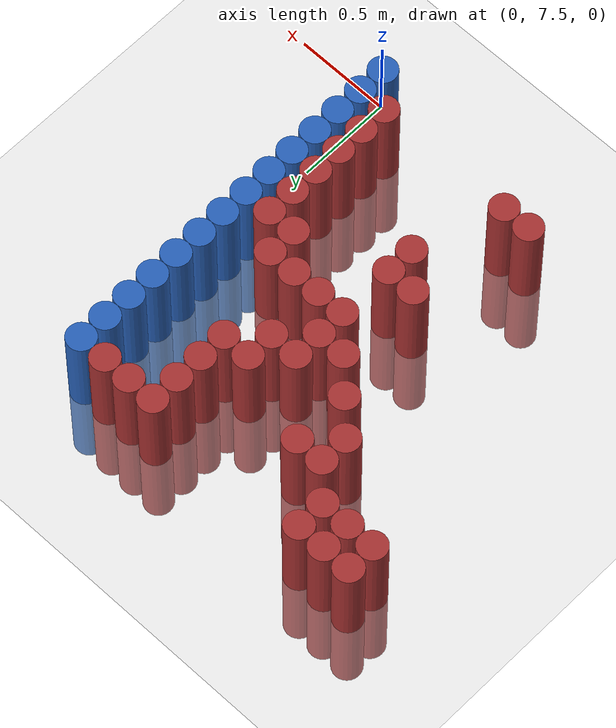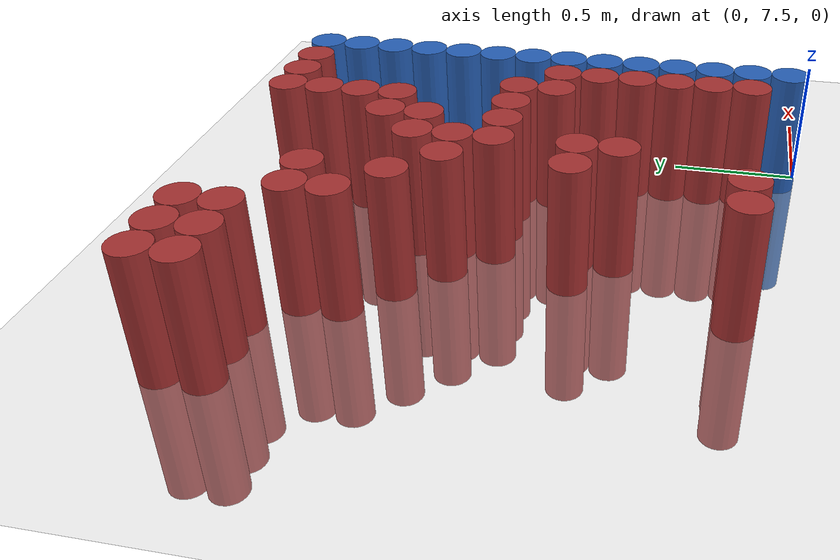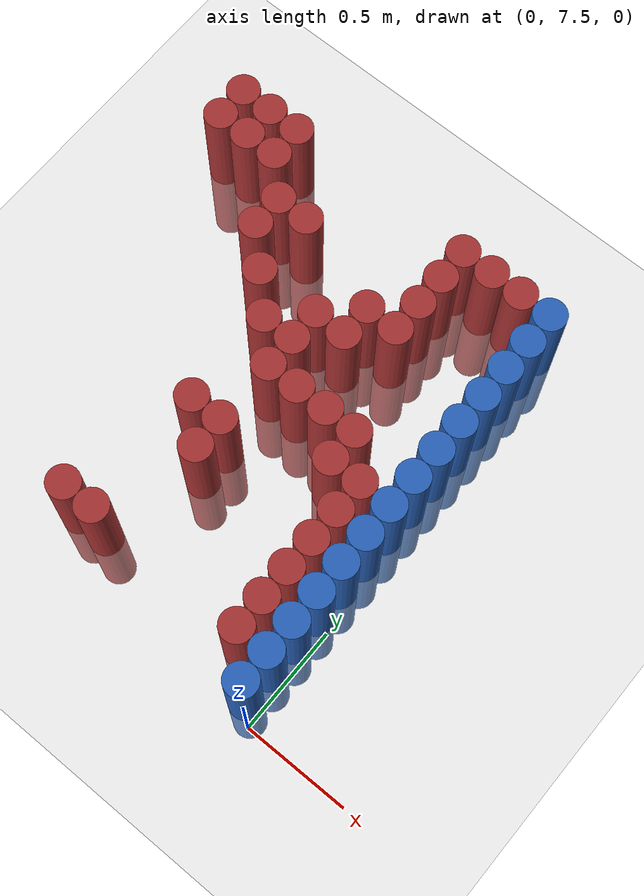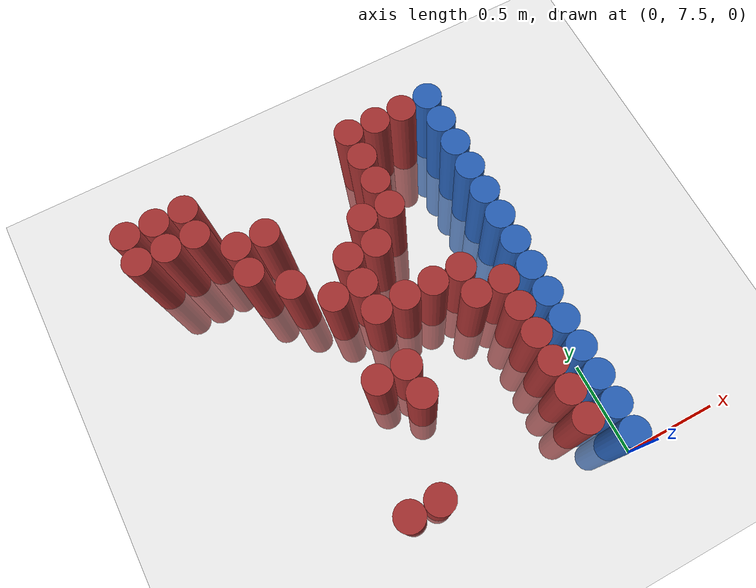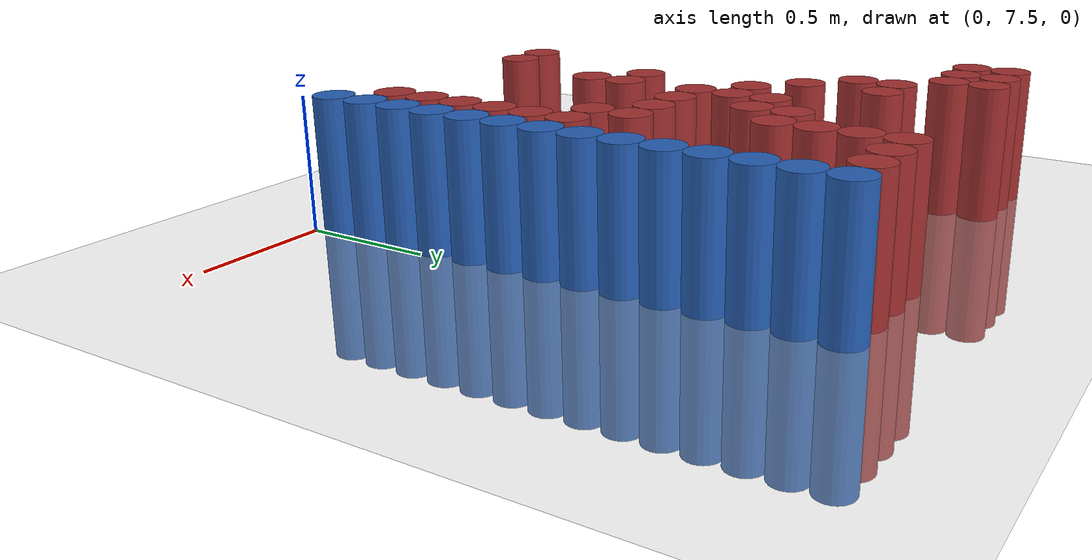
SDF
<sdf version="1.6">
 <world name="default">
  <model name="ground_plane">
   <static>1</static>
   <link name="link">
    <collision name="collision">
     <geometry><plane><normal>0 0 1</normal><size>100 100</size></plane></geometry>
     <surface><friction><ode><mu>100</mu><mu2>50</mu2></ode></friction></surface>
    </collision>
    <visual name="visual">
     <cast_shadows>0</cast_shadows>
     <geometry><plane><normal>0 0 1</normal><size>100 100</size></plane></geometry>
     <material>
      <script><uri>file://media/materials/scripts/gazebo.material</uri><name>Gazebo/Grey</name></script>
     </material>
    </visual>
   </link>
  </model>
  <model name="unit_cylinder_236">
   <static>1</static>
   <pose>-1.725000 9.375000 0.000000 0.000000 0.000000 0.000000</pose>
   <link name="link">
    <inertial>
     <mass>1</mass>
     <inertia><ixx>0.145833</ixx><ixy>0</ixy><ixz>0</ixz><iyy>0.145833</iyy><iyz>0</iyz><izz>0.125</izz></inertia>
    </inertial>
    <collision name="collision">
     <geometry><cylinder><radius>0.075000</radius><length>1</length></cylinder></geometry>
    </collision>
    <visual name="visual">
     <geometry><cylinder><radius>0.075000</radius><length>1</length></cylinder></geometry>
     <material>
      <ambient>0.648000 0.192000 0.192000 1</ambient>
      <diffuse>0.648000 0.192000 0.192000 1</diffuse>
     </material>
     <material>
      <script><name>Gazebo/Grey</name><uri>file://media/materials/scripts/gazebo.material</uri></script>
     </material>
    </visual>
   </link>
  </model>
  <model name="unit_cylinder_237">
   <static>1</static>
   <pose>-1.725000 9.525000 0.000000 0.000000 0.000000 0.000000</pose>
   <link name="link">
    <inertial>
     <mass>1</mass>
     <inertia><ixx>0.145833</ixx><ixy>0</ixy><ixz>0</ixz><iyy>0.145833</iyy><iyz>0</iyz><izz>0.125</izz></inertia>
    </inertial>
    <collision name="collision">
     <geometry><cylinder><radius>0.075000</radius><length>1</length></cylinder></geometry>
    </collision>
    <visual name="visual">
     <geometry><cylinder><radius>0.075000</radius><length>1</length></cylinder></geometry>
     <material>
      <ambient>0.648000 0.192000 0.192000 1</ambient>
      <diffuse>0.648000 0.192000 0.192000 1</diffuse>
     </material>
     <material>
      <script><name>Gazebo/Grey</name><uri>file://media/materials/scripts/gazebo.material</uri></script>
     </material>
    </visual>
   </link>
  </model>
  <model name="unit_cylinder_241">
   <static>1</static>
   <pose>-1.575000 9.375000 0.000000 0.000000 0.000000 0.000000</pose>
   <link name="link">
    <inertial>
     <mass>1</mass>
     <inertia><ixx>0.145833</ixx><ixy>0</ixy><ixz>0</ixz><iyy>0.145833</iyy><iyz>0</iyz><izz>0.125</izz></inertia>
    </inertial>
    <collision name="collision">
     <geometry><cylinder><radius>0.075000</radius><length>1</length></cylinder></geometry>
    </collision>
    <visual name="visual">
     <geometry><cylinder><radius>0.075000</radius><length>1</length></cylinder></geometry>
     <material>
      <ambient>0.648000 0.192000 0.192000 1</ambient>
      <diffuse>0.648000 0.192000 0.192000 1</diffuse>
     </material>
     <material>
      <script><name>Gazebo/Grey</name><uri>file://media/materials/scripts/gazebo.material</uri></script>
     </material>
    </visual>
   </link>
  </model>
  <model name="unit_cylinder_242">
   <static>1</static>
   <pose>-1.575000 9.525000 0.000000 0.000000 0.000000 0.000000</pose>
   <link name="link">
    <inertial>
     <mass>1</mass>
     <inertia><ixx>0.145833</ixx><ixy>0</ixy><ixz>0</ixz><iyy>0.145833</iyy><iyz>0</iyz><izz>0.125</izz></inertia>
    </inertial>
    <collision name="collision">
     <geometry><cylinder><radius>0.075000</radius><length>1</length></cylinder></geometry>
    </collision>
    <visual name="visual">
     <geometry><cylinder><radius>0.075000</radius><length>1</length></cylinder></geometry>
     <material>
      <ambient>0.648000 0.192000 0.192000 1</ambient>
      <diffuse>0.648000 0.192000 0.192000 1</diffuse>
     </material>
     <material>
      <script><name>Gazebo/Grey</name><uri>file://media/materials/scripts/gazebo.material</uri></script>
     </material>
    </visual>
   </link>
  </model>
  <model name="unit_cylinder_246">
   <static>1</static>
   <pose>-1.425000 9.375000 0.000000 0.000000 0.000000 0.000000</pose>
   <link name="link">
    <inertial>
     <mass>1</mass>
     <inertia><ixx>0.145833</ixx><ixy>0</ixy><ixz>0</ixz><iyy>0.145833</iyy><iyz>0</iyz><izz>0.125</izz></inertia>
    </inertial>
    <collision name="collision">
     <geometry><cylinder><radius>0.075000</radius><length>1</length></cylinder></geometry>
    </collision>
    <visual name="visual">
     <geometry><cylinder><radius>0.075000</radius><length>1</length></cylinder></geometry>
     <material>
      <ambient>0.648000 0.192000 0.192000 1</ambient>
      <diffuse>0.648000 0.192000 0.192000 1</diffuse>
     </material>
     <material>
      <script><name>Gazebo/Grey</name><uri>file://media/materials/scripts/gazebo.material</uri></script>
     </material>
    </visual>
   </link>
  </model>
  <model name="unit_cylinder_247">
   <static>1</static>
   <pose>-1.425000 9.525000 0.000000 0.000000 0.000000 0.000000</pose>
   <link name="link">
    <inertial>
     <mass>1</mass>
     <inertia><ixx>0.145833</ixx><ixy>0</ixy><ixz>0</ixz><iyy>0.145833</iyy><iyz>0</iyz><izz>0.125</izz></inertia>
    </inertial>
    <collision name="collision">
     <geometry><cylinder><radius>0.075000</radius><length>1</length></cylinder></geometry>
    </collision>
    <visual name="visual">
     <geometry><cylinder><radius>0.075000</radius><length>1</length></cylinder></geometry>
     <material>
      <ambient>0.648000 0.192000 0.192000 1</ambient>
      <diffuse>0.648000 0.192000 0.192000 1</diffuse>
     </material>
     <material>
      <script><name>Gazebo/Grey</name><uri>file://media/materials/scripts/gazebo.material</uri></script>
     </material>
    </visual>
   </link>
  </model>
  <model name="unit_cylinder_251">
   <static>1</static>
   <pose>-1.275000 9.075000 0.000000 0.000000 0.000000 0.000000</pose>
   <link name="link">
    <inertial>
     <mass>1</mass>
     <inertia><ixx>0.145833</ixx><ixy>0</ixy><ixz>0</ixz><iyy>0.145833</iyy><iyz>0</iyz><izz>0.125</izz></inertia>
    </inertial>
    <collision name="collision">
     <geometry><cylinder><radius>0.075000</radius><length>1</length></cylinder></geometry>
    </collision>
    <visual name="visual">
     <geometry><cylinder><radius>0.075000</radius><length>1</length></cylinder></geometry>
     <material>
      <ambient>0.648000 0.192000 0.192000 1</ambient>
      <diffuse>0.648000 0.192000 0.192000 1</diffuse>
     </material>
     <material>
      <script><name>Gazebo/Grey</name><uri>file://media/materials/scripts/gazebo.material</uri></script>
     </material>
    </visual>
   </link>
  </model>
  <model name="unit_cylinder_252">
   <static>1</static>
   <pose>-1.275000 9.225000 0.000000 0.000000 0.000000 0.000000</pose>
   <link name="link">
    <inertial>
     <mass>1</mass>
     <inertia><ixx>0.145833</ixx><ixy>0</ixy><ixz>0</ixz><iyy>0.145833</iyy><iyz>0</iyz><izz>0.125</izz></inertia>
    </inertial>
    <collision name="collision">
     <geometry><cylinder><radius>0.075000</radius><length>1</length></cylinder></geometry>
    </collision>
    <visual name="visual">
     <geometry><cylinder><radius>0.075000</radius><length>1</length></cylinder></geometry>
     <material>
      <ambient>0.648000 0.192000 0.192000 1</ambient>
      <diffuse>0.648000 0.192000 0.192000 1</diffuse>
     </material>
     <material>
      <script><name>Gazebo/Grey</name><uri>file://media/materials/scripts/gazebo.material</uri></script>
     </material>
    </visual>
   </link>
  </model>
  <model name="unit_cylinder_254">
   <static>1</static>
   <pose>-1.125000 7.725000 0.000000 0.000000 0.000000 0.000000</pose>
   <link name="link">
    <inertial>
     <mass>1</mass>
     <inertia><ixx>0.145833</ixx><ixy>0</ixy><ixz>0</ixz><iyy>0.145833</iyy><iyz>0</iyz><izz>0.125</izz></inertia>
    </inertial>
    <collision name="collision">
     <geometry><cylinder><radius>0.075000</radius><length>1</length></cylinder></geometry>
    </collision>
    <visual name="visual">
     <geometry><cylinder><radius>0.075000</radius><length>1</length></cylinder></geometry>
     <material>
      <ambient>0.648000 0.192000 0.192000 1</ambient>
      <diffuse>0.648000 0.192000 0.192000 1</diffuse>
     </material>
     <material>
      <script><name>Gazebo/Grey</name><uri>file://media/materials/scripts/gazebo.material</uri></script>
     </material>
    </visual>
   </link>
  </model>
  <model name="unit_cylinder_255">
   <static>1</static>
   <pose>-1.125000 8.925000 0.000000 0.000000 0.000000 0.000000</pose>
   <link name="link">
    <inertial>
     <mass>1</mass>
     <inertia><ixx>0.145833</ixx><ixy>0</ixy><ixz>0</ixz><iyy>0.145833</iyy><iyz>0</iyz><izz>0.125</izz></inertia>
    </inertial>
    <collision name="collision">
     <geometry><cylinder><radius>0.075000</radius><length>1</length></cylinder></geometry>
    </collision>
    <visual name="visual">
     <geometry><cylinder><radius>0.075000</radius><length>1</length></cylinder></geometry>
     <material>
      <ambient>0.648000 0.192000 0.192000 1</ambient>
      <diffuse>0.648000 0.192000 0.192000 1</diffuse>
     </material>
     <material>
      <script><name>Gazebo/Grey</name><uri>file://media/materials/scripts/gazebo.material</uri></script>
     </material>
    </visual>
   </link>
  </model>
  <model name="unit_cylinder_256">
   <static>1</static>
   <pose>-1.125000 9.225000 0.000000 0.000000 0.000000 0.000000</pose>
   <link name="link">
    <inertial>
     <mass>1</mass>
     <inertia><ixx>0.145833</ixx><ixy>0</ixy><ixz>0</ixz><iyy>0.145833</iyy><iyz>0</iyz><izz>0.125</izz></inertia>
    </inertial>
    <collision name="collision">
     <geometry><cylinder><radius>0.075000</radius><length>1</length></cylinder></geometry>
    </collision>
    <visual name="visual">
     <geometry><cylinder><radius>0.075000</radius><length>1</length></cylinder></geometry>
     <material>
      <ambient>0.648000 0.192000 0.192000 1</ambient>
      <diffuse>0.648000 0.192000 0.192000 1</diffuse>
     </material>
     <material>
      <script><name>Gazebo/Grey</name><uri>file://media/materials/scripts/gazebo.material</uri></script>
     </material>
    </visual>
   </link>
  </model>
  <model name="unit_cylinder_260">
   <static>1</static>
   <pose>-0.975000 7.725000 0.000000 0.000000 0.000000 0.000000</pose>
   <link name="link">
    <inertial>
     <mass>1</mass>
     <inertia><ixx>0.145833</ixx><ixy>0</ixy><ixz>0</ixz><iyy>0.145833</iyy><iyz>0</iyz><izz>0.125</izz></inertia>
    </inertial>
    <collision name="collision">
     <geometry><cylinder><radius>0.075000</radius><length>1</length></cylinder></geometry>
    </collision>
    <visual name="visual">
     <geometry><cylinder><radius>0.075000</radius><length>1</length></cylinder></geometry>
     <material>
      <ambient>0.648000 0.192000 0.192000 1</ambient>
      <diffuse>0.648000 0.192000 0.192000 1</diffuse>
     </material>
     <material>
      <script><name>Gazebo/Grey</name><uri>file://media/materials/scripts/gazebo.material</uri></script>
     </material>
    </visual>
   </link>
  </model>
  <model name="unit_cylinder_261">
   <static>1</static>
   <pose>-0.975000 8.325000 0.000000 0.000000 0.000000 0.000000</pose>
   <link name="link">
    <inertial>
     <mass>1</mass>
     <inertia><ixx>0.145833</ixx><ixy>0</ixy><ixz>0</ixz><iyy>0.145833</iyy><iyz>0</iyz><izz>0.125</izz></inertia>
    </inertial>
    <collision name="collision">
     <geometry><cylinder><radius>0.075000</radius><length>1</length></cylinder></geometry>
    </collision>
    <visual name="visual">
     <geometry><cylinder><radius>0.075000</radius><length>1</length></cylinder></geometry>
     <material>
      <ambient>0.648000 0.192000 0.192000 1</ambient>
      <diffuse>0.648000 0.192000 0.192000 1</diffuse>
     </material>
     <material>
      <script><name>Gazebo/Grey</name><uri>file://media/materials/scripts/gazebo.material</uri></script>
     </material>
    </visual>
   </link>
  </model>
  <model name="unit_cylinder_262">
   <static>1</static>
   <pose>-0.975000 8.775000 0.000000 0.000000 0.000000 0.000000</pose>
   <link name="link">
    <inertial>
     <mass>1</mass>
     <inertia><ixx>0.145833</ixx><ixy>0</ixy><ixz>0</ixz><iyy>0.145833</iyy><iyz>0</iyz><izz>0.125</izz></inertia>
    </inertial>
    <collision name="collision">
     <geometry><cylinder><radius>0.075000</radius><length>1</length></cylinder></geometry>
    </collision>
    <visual name="visual">
     <geometry><cylinder><radius>0.075000</radius><length>1</length></cylinder></geometry>
     <material>
      <ambient>0.648000 0.192000 0.192000 1</ambient>
      <diffuse>0.648000 0.192000 0.192000 1</diffuse>
     </material>
     <material>
      <script><name>Gazebo/Grey</name><uri>file://media/materials/scripts/gazebo.material</uri></script>
     </material>
    </visual>
   </link>
  </model>
  <model name="unit_cylinder_270">
   <static>1</static>
   <pose>-0.825000 8.175000 0.000000 0.000000 0.000000 0.000000</pose>
   <link name="link">
    <inertial>
     <mass>1</mass>
     <inertia><ixx>0.145833</ixx><ixy>0</ixy><ixz>0</ixz><iyy>0.145833</iyy><iyz>0</iyz><izz>0.125</izz></inertia>
    </inertial>
    <collision name="collision">
     <geometry><cylinder><radius>0.075000</radius><length>1</length></cylinder></geometry>
    </collision>
    <visual name="visual">
     <geometry><cylinder><radius>0.075000</radius><length>1</length></cylinder></geometry>
     <material>
      <ambient>0.648000 0.192000 0.192000 1</ambient>
      <diffuse>0.648000 0.192000 0.192000 1</diffuse>
     </material>
     <material>
      <script><name>Gazebo/Grey</name><uri>file://media/materials/scripts/gazebo.material</uri></script>
     </material>
    </visual>
   </link>
  </model>
  <model name="unit_cylinder_271">
   <static>1</static>
   <pose>-0.825000 8.325000 0.000000 0.000000 0.000000 0.000000</pose>
   <link name="link">
    <inertial>
     <mass>1</mass>
     <inertia><ixx>0.145833</ixx><ixy>0</ixy><ixz>0</ixz><iyy>0.145833</iyy><iyz>0</iyz><izz>0.125</izz></inertia>
    </inertial>
    <collision name="collision">
     <geometry><cylinder><radius>0.075000</radius><length>1</length></cylinder></geometry>
    </collision>
    <visual name="visual">
     <geometry><cylinder><radius>0.075000</radius><length>1</length></cylinder></geometry>
     <material>
      <ambient>0.648000 0.192000 0.192000 1</ambient>
      <diffuse>0.648000 0.192000 0.192000 1</diffuse>
     </material>
     <material>
      <script><name>Gazebo/Grey</name><uri>file://media/materials/scripts/gazebo.material</uri></script>
     </material>
    </visual>
   </link>
  </model>
  <model name="unit_cylinder_272">
   <static>1</static>
   <pose>-0.825000 8.625000 0.000000 0.000000 0.000000 0.000000</pose>
   <link name="link">
    <inertial>
     <mass>1</mass>
     <inertia><ixx>0.145833</ixx><ixy>0</ixy><ixz>0</ixz><iyy>0.145833</iyy><iyz>0</iyz><izz>0.125</izz></inertia>
    </inertial>
    <collision name="collision">
     <geometry><cylinder><radius>0.075000</radius><length>1</length></cylinder></geometry>
    </collision>
    <visual name="visual">
     <geometry><cylinder><radius>0.075000</radius><length>1</length></cylinder></geometry>
     <material>
      <ambient>0.648000 0.192000 0.192000 1</ambient>
      <diffuse>0.648000 0.192000 0.192000 1</diffuse>
     </material>
     <material>
      <script><name>Gazebo/Grey</name><uri>file://media/materials/scripts/gazebo.material</uri></script>
     </material>
    </visual>
   </link>
  </model>
  <model name="unit_cylinder_273">
   <static>1</static>
   <pose>-0.825000 8.775000 0.000000 0.000000 0.000000 0.000000</pose>
   <link name="link">
    <inertial>
     <mass>1</mass>
     <inertia><ixx>0.145833</ixx><ixy>0</ixy><ixz>0</ixz><iyy>0.145833</iyy><iyz>0</iyz><izz>0.125</izz></inertia>
    </inertial>
    <collision name="collision">
     <geometry><cylinder><radius>0.075000</radius><length>1</length></cylinder></geometry>
    </collision>
    <visual name="visual">
     <geometry><cylinder><radius>0.075000</radius><length>1</length></cylinder></geometry>
     <material>
      <ambient>0.648000 0.192000 0.192000 1</ambient>
      <diffuse>0.648000 0.192000 0.192000 1</diffuse>
     </material>
     <material>
      <script><name>Gazebo/Grey</name><uri>file://media/materials/scripts/gazebo.material</uri></script>
     </material>
    </visual>
   </link>
  </model>
  <model name="unit_cylinder_274">
   <static>1</static>
   <pose>-0.825000 8.925000 0.000000 0.000000 0.000000 0.000000</pose>
   <link name="link">
    <inertial>
     <mass>1</mass>
     <inertia><ixx>0.145833</ixx><ixy>0</ixy><ixz>0</ixz><iyy>0.145833</iyy><iyz>0</iyz><izz>0.125</izz></inertia>
    </inertial>
    <collision name="collision">
     <geometry><cylinder><radius>0.075000</radius><length>1</length></cylinder></geometry>
    </collision>
    <visual name="visual">
     <geometry><cylinder><radius>0.075000</radius><length>1</length></cylinder></geometry>
     <material>
      <ambient>0.648000 0.192000 0.192000 1</ambient>
      <diffuse>0.648000 0.192000 0.192000 1</diffuse>
     </material>
     <material>
      <script><name>Gazebo/Grey</name><uri>file://media/materials/scripts/gazebo.material</uri></script>
     </material>
    </visual>
   </link>
  </model>
  <model name="unit_cylinder_284">
   <static>1</static>
   <pose>-0.675000 8.625000 0.000000 0.000000 0.000000 0.000000</pose>
   <link name="link">
    <inertial>
     <mass>1</mass>
     <inertia><ixx>0.145833</ixx><ixy>0</ixy><ixz>0</ixz><iyy>0.145833</iyy><iyz>0</iyz><izz>0.125</izz></inertia>
    </inertial>
    <collision name="collision">
     <geometry><cylinder><radius>0.075000</radius><length>1</length></cylinder></geometry>
    </collision>
    <visual name="visual">
     <geometry><cylinder><radius>0.075000</radius><length>1</length></cylinder></geometry>
     <material>
      <ambient>0.648000 0.192000 0.192000 1</ambient>
      <diffuse>0.648000 0.192000 0.192000 1</diffuse>
     </material>
     <material>
      <script><name>Gazebo/Grey</name><uri>file://media/materials/scripts/gazebo.material</uri></script>
     </material>
    </visual>
   </link>
  </model>
  <model name="unit_cylinder_285">
   <static>1</static>
   <pose>-0.675000 8.925000 0.000000 0.000000 0.000000 0.000000</pose>
   <link name="link">
    <inertial>
     <mass>1</mass>
     <inertia><ixx>0.145833</ixx><ixy>0</ixy><ixz>0</ixz><iyy>0.145833</iyy><iyz>0</iyz><izz>0.125</izz></inertia>
    </inertial>
    <collision name="collision">
     <geometry><cylinder><radius>0.075000</radius><length>1</length></cylinder></geometry>
    </collision>
    <visual name="visual">
     <geometry><cylinder><radius>0.075000</radius><length>1</length></cylinder></geometry>
     <material>
      <ambient>0.648000 0.192000 0.192000 1</ambient>
      <diffuse>0.648000 0.192000 0.192000 1</diffuse>
     </material>
     <material>
      <script><name>Gazebo/Grey</name><uri>file://media/materials/scripts/gazebo.material</uri></script>
     </material>
    </visual>
   </link>
  </model>
  <model name="unit_cylinder_286">
   <static>1</static>
   <pose>-0.675000 9.075000 0.000000 0.000000 0.000000 0.000000</pose>
   <link name="link">
    <inertial>
     <mass>1</mass>
     <inertia><ixx>0.145833</ixx><ixy>0</ixy><ixz>0</ixz><iyy>0.145833</iyy><iyz>0</iyz><izz>0.125</izz></inertia>
    </inertial>
    <collision name="collision">
     <geometry><cylinder><radius>0.075000</radius><length>1</length></cylinder></geometry>
    </collision>
    <visual name="visual">
     <geometry><cylinder><radius>0.075000</radius><length>1</length></cylinder></geometry>
     <material>
      <ambient>0.648000 0.192000 0.192000 1</ambient>
      <diffuse>0.648000 0.192000 0.192000 1</diffuse>
     </material>
     <material>
      <script><name>Gazebo/Grey</name><uri>file://media/materials/scripts/gazebo.material</uri></script>
     </material>
    </visual>
   </link>
  </model>
  <model name="unit_cylinder_294">
   <static>1</static>
   <pose>-0.525000 8.625000 0.000000 0.000000 0.000000 0.000000</pose>
   <link name="link">
    <inertial>
     <mass>1</mass>
     <inertia><ixx>0.145833</ixx><ixy>0</ixy><ixz>0</ixz><iyy>0.145833</iyy><iyz>0</iyz><izz>0.125</izz></inertia>
    </inertial>
    <collision name="collision">
     <geometry><cylinder><radius>0.075000</radius><length>1</length></cylinder></geometry>
    </collision>
    <visual name="visual">
     <geometry><cylinder><radius>0.075000</radius><length>1</length></cylinder></geometry>
     <material>
      <ambient>0.648000 0.192000 0.192000 1</ambient>
      <diffuse>0.648000 0.192000 0.192000 1</diffuse>
     </material>
     <material>
      <script><name>Gazebo/Grey</name><uri>file://media/materials/scripts/gazebo.material</uri></script>
     </material>
    </visual>
   </link>
  </model>
  <model name="unit_cylinder_295">
   <static>1</static>
   <pose>-0.525000 9.075000 0.000000 0.000000 0.000000 0.000000</pose>
   <link name="link">
    <inertial>
     <mass>1</mass>
     <inertia><ixx>0.145833</ixx><ixy>0</ixy><ixz>0</ixz><iyy>0.145833</iyy><iyz>0</iyz><izz>0.125</izz></inertia>
    </inertial>
    <collision name="collision">
     <geometry><cylinder><radius>0.075000</radius><length>1</length></cylinder></geometry>
    </collision>
    <visual name="visual">
     <geometry><cylinder><radius>0.075000</radius><length>1</length></cylinder></geometry>
     <material>
      <ambient>0.648000 0.192000 0.192000 1</ambient>
      <diffuse>0.648000 0.192000 0.192000 1</diffuse>
     </material>
     <material>
      <script><name>Gazebo/Grey</name><uri>file://media/materials/scripts/gazebo.material</uri></script>
     </material>
    </visual>
   </link>
  </model>
  <model name="unit_cylinder_296">
   <static>1</static>
   <pose>-0.525000 9.225000 0.000000 0.000000 0.000000 0.000000</pose>
   <link name="link">
    <inertial>
     <mass>1</mass>
     <inertia><ixx>0.145833</ixx><ixy>0</ixy><ixz>0</ixz><iyy>0.145833</iyy><iyz>0</iyz><izz>0.125</izz></inertia>
    </inertial>
    <collision name="collision">
     <geometry><cylinder><radius>0.075000</radius><length>1</length></cylinder></geometry>
    </collision>
    <visual name="visual">
     <geometry><cylinder><radius>0.075000</radius><length>1</length></cylinder></geometry>
     <material>
      <ambient>0.648000 0.192000 0.192000 1</ambient>
      <diffuse>0.648000 0.192000 0.192000 1</diffuse>
     </material>
     <material>
      <script><name>Gazebo/Grey</name><uri>file://media/materials/scripts/gazebo.material</uri></script>
     </material>
    </visual>
   </link>
  </model>
  <model name="unit_cylinder_297">
   <static>1</static>
   <pose>-0.525000 9.375000 0.000000 0.000000 0.000000 0.000000</pose>
   <link name="link">
    <inertial>
     <mass>1</mass>
     <inertia><ixx>0.145833</ixx><ixy>0</ixy><ixz>0</ixz><iyy>0.145833</iyy><iyz>0</iyz><izz>0.125</izz></inertia>
    </inertial>
    <collision name="collision">
     <geometry><cylinder><radius>0.075000</radius><length>1</length></cylinder></geometry>
    </collision>
    <visual name="visual">
     <geometry><cylinder><radius>0.075000</radius><length>1</length></cylinder></geometry>
     <material>
      <ambient>0.648000 0.192000 0.192000 1</ambient>
      <diffuse>0.648000 0.192000 0.192000 1</diffuse>
     </material>
     <material>
      <script><name>Gazebo/Grey</name><uri>file://media/materials/scripts/gazebo.material</uri></script>
     </material>
    </visual>
   </link>
  </model>
  <model name="unit_cylinder_298">
   <static>1</static>
   <pose>-0.525000 9.525000 0.000000 0.000000 0.000000 0.000000</pose>
   <link name="link">
    <inertial>
     <mass>1</mass>
     <inertia><ixx>0.145833</ixx><ixy>0</ixy><ixz>0</ixz><iyy>0.145833</iyy><iyz>0</iyz><izz>0.125</izz></inertia>
    </inertial>
    <collision name="collision">
     <geometry><cylinder><radius>0.075000</radius><length>1</length></cylinder></geometry>
    </collision>
    <visual name="visual">
     <geometry><cylinder><radius>0.075000</radius><length>1</length></cylinder></geometry>
     <material>
      <ambient>0.648000 0.192000 0.192000 1</ambient>
      <diffuse>0.648000 0.192000 0.192000 1</diffuse>
     </material>
     <material>
      <script><name>Gazebo/Grey</name><uri>file://media/materials/scripts/gazebo.material</uri></script>
     </material>
    </visual>
   </link>
  </model>
  <model name="unit_cylinder_305">
   <static>1</static>
   <pose>-0.375000 8.475000 0.000000 0.000000 0.000000 0.000000</pose>
   <link name="link">
    <inertial>
     <mass>1</mass>
     <inertia><ixx>0.145833</ixx><ixy>0</ixy><ixz>0</ixz><iyy>0.145833</iyy><iyz>0</iyz><izz>0.125</izz></inertia>
    </inertial>
    <collision name="collision">
     <geometry><cylinder><radius>0.075000</radius><length>1</length></cylinder></geometry>
    </collision>
    <visual name="visual">
     <geometry><cylinder><radius>0.075000</radius><length>1</length></cylinder></geometry>
     <material>
      <ambient>0.648000 0.192000 0.192000 1</ambient>
      <diffuse>0.648000 0.192000 0.192000 1</diffuse>
     </material>
     <material>
      <script><name>Gazebo/Grey</name><uri>file://media/materials/scripts/gazebo.material</uri></script>
     </material>
    </visual>
   </link>
  </model>
  <model name="unit_cylinder_306">
   <static>1</static>
   <pose>-0.375000 8.625000 0.000000 0.000000 0.000000 0.000000</pose>
   <link name="link">
    <inertial>
     <mass>1</mass>
     <inertia><ixx>0.145833</ixx><ixy>0</ixy><ixz>0</ixz><iyy>0.145833</iyy><iyz>0</iyz><izz>0.125</izz></inertia>
    </inertial>
    <collision name="collision">
     <geometry><cylinder><radius>0.075000</radius><length>1</length></cylinder></geometry>
    </collision>
    <visual name="visual">
     <geometry><cylinder><radius>0.075000</radius><length>1</length></cylinder></geometry>
     <material>
      <ambient>0.648000 0.192000 0.192000 1</ambient>
      <diffuse>0.648000 0.192000 0.192000 1</diffuse>
     </material>
     <material>
      <script><name>Gazebo/Grey</name><uri>file://media/materials/scripts/gazebo.material</uri></script>
     </material>
    </visual>
   </link>
  </model>
  <model name="unit_cylinder_307">
   <static>1</static>
   <pose>-0.375000 9.525000 0.000000 0.000000 0.000000 0.000000</pose>
   <link name="link">
    <inertial>
     <mass>1</mass>
     <inertia><ixx>0.145833</ixx><ixy>0</ixy><ixz>0</ixz><iyy>0.145833</iyy><iyz>0</iyz><izz>0.125</izz></inertia>
    </inertial>
    <collision name="collision">
     <geometry><cylinder><radius>0.075000</radius><length>1</length></cylinder></geometry>
    </collision>
    <visual name="visual">
     <geometry><cylinder><radius>0.075000</radius><length>1</length></cylinder></geometry>
     <material>
      <ambient>0.648000 0.192000 0.192000 1</ambient>
      <diffuse>0.648000 0.192000 0.192000 1</diffuse>
     </material>
     <material>
      <script><name>Gazebo/Grey</name><uri>file://media/materials/scripts/gazebo.material</uri></script>
     </material>
    </visual>
   </link>
  </model>
  <model name="unit_cylinder_318">
   <static>1</static>
   <pose>-0.225000 7.725000 0.000000 0.000000 0.000000 0.000000</pose>
   <link name="link">
    <inertial>
     <mass>1</mass>
     <inertia><ixx>0.145833</ixx><ixy>0</ixy><ixz>0</ixz><iyy>0.145833</iyy><iyz>0</iyz><izz>0.125</izz></inertia>
    </inertial>
    <collision name="collision">
     <geometry><cylinder><radius>0.075000</radius><length>1</length></cylinder></geometry>
    </collision>
    <visual name="visual">
     <geometry><cylinder><radius>0.075000</radius><length>1</length></cylinder></geometry>
     <material>
      <ambient>0.648000 0.192000 0.192000 1</ambient>
      <diffuse>0.648000 0.192000 0.192000 1</diffuse>
     </material>
     <material>
      <script><name>Gazebo/Grey</name><uri>file://media/materials/scripts/gazebo.material</uri></script>
     </material>
    </visual>
   </link>
  </model>
  <model name="unit_cylinder_319">
   <static>1</static>
   <pose>-0.225000 7.875000 0.000000 0.000000 0.000000 0.000000</pose>
   <link name="link">
    <inertial>
     <mass>1</mass>
     <inertia><ixx>0.145833</ixx><ixy>0</ixy><ixz>0</ixz><iyy>0.145833</iyy><iyz>0</iyz><izz>0.125</izz></inertia>
    </inertial>
    <collision name="collision">
     <geometry><cylinder><radius>0.075000</radius><length>1</length></cylinder></geometry>
    </collision>
    <visual name="visual">
     <geometry><cylinder><radius>0.075000</radius><length>1</length></cylinder></geometry>
     <material>
      <ambient>0.648000 0.192000 0.192000 1</ambient>
      <diffuse>0.648000 0.192000 0.192000 1</diffuse>
     </material>
     <material>
      <script><name>Gazebo/Grey</name><uri>file://media/materials/scripts/gazebo.material</uri></script>
     </material>
    </visual>
   </link>
  </model>
  <model name="unit_cylinder_320">
   <static>1</static>
   <pose>-0.225000 8.025000 0.000000 0.000000 0.000000 0.000000</pose>
   <link name="link">
    <inertial>
     <mass>1</mass>
     <inertia><ixx>0.145833</ixx><ixy>0</ixy><ixz>0</ixz><iyy>0.145833</iyy><iyz>0</iyz><izz>0.125</izz></inertia>
    </inertial>
    <collision name="collision">
     <geometry><cylinder><radius>0.075000</radius><length>1</length></cylinder></geometry>
    </collision>
    <visual name="visual">
     <geometry><cylinder><radius>0.075000</radius><length>1</length></cylinder></geometry>
     <material>
      <ambient>0.648000 0.192000 0.192000 1</ambient>
      <diffuse>0.648000 0.192000 0.192000 1</diffuse>
     </material>
     <material>
      <script><name>Gazebo/Grey</name><uri>file://media/materials/scripts/gazebo.material</uri></script>
     </material>
    </visual>
   </link>
  </model>
  <model name="unit_cylinder_321">
   <static>1</static>
   <pose>-0.225000 8.175000 0.000000 0.000000 0.000000 0.000000</pose>
   <link name="link">
    <inertial>
     <mass>1</mass>
     <inertia><ixx>0.145833</ixx><ixy>0</ixy><ixz>0</ixz><iyy>0.145833</iyy><iyz>0</iyz><izz>0.125</izz></inertia>
    </inertial>
    <collision name="collision">
     <geometry><cylinder><radius>0.075000</radius><length>1</length></cylinder></geometry>
    </collision>
    <visual name="visual">
     <geometry><cylinder><radius>0.075000</radius><length>1</length></cylinder></geometry>
     <material>
      <ambient>0.648000 0.192000 0.192000 1</ambient>
      <diffuse>0.648000 0.192000 0.192000 1</diffuse>
     </material>
     <material>
      <script><name>Gazebo/Grey</name><uri>file://media/materials/scripts/gazebo.material</uri></script>
     </material>
    </visual>
   </link>
  </model>
  <model name="unit_cylinder_322">
   <static>1</static>
   <pose>-0.225000 8.325000 0.000000 0.000000 0.000000 0.000000</pose>
   <link name="link">
    <inertial>
     <mass>1</mass>
     <inertia><ixx>0.145833</ixx><ixy>0</ixy><ixz>0</ixz><iyy>0.145833</iyy><iyz>0</iyz><izz>0.125</izz></inertia>
    </inertial>
    <collision name="collision">
     <geometry><cylinder><radius>0.075000</radius><length>1</length></cylinder></geometry>
    </collision>
    <visual name="visual">
     <geometry><cylinder><radius>0.075000</radius><length>1</length></cylinder></geometry>
     <material>
      <ambient>0.648000 0.192000 0.192000 1</ambient>
      <diffuse>0.648000 0.192000 0.192000 1</diffuse>
     </material>
     <material>
      <script><name>Gazebo/Grey</name><uri>file://media/materials/scripts/gazebo.material</uri></script>
     </material>
    </visual>
   </link>
  </model>
  <model name="unit_cylinder_323">
   <static>1</static>
   <pose>-0.225000 8.475000 0.000000 0.000000 0.000000 0.000000</pose>
   <link name="link">
    <inertial>
     <mass>1</mass>
     <inertia><ixx>0.145833</ixx><ixy>0</ixy><ixz>0</ixz><iyy>0.145833</iyy><iyz>0</iyz><izz>0.125</izz></inertia>
    </inertial>
    <collision name="collision">
     <geometry><cylinder><radius>0.075000</radius><length>1</length></cylinder></geometry>
    </collision>
    <visual name="visual">
     <geometry><cylinder><radius>0.075000</radius><length>1</length></cylinder></geometry>
     <material>
      <ambient>0.648000 0.192000 0.192000 1</ambient>
      <diffuse>0.648000 0.192000 0.192000 1</diffuse>
     </material>
     <material>
      <script><name>Gazebo/Grey</name><uri>file://media/materials/scripts/gazebo.material</uri></script>
     </material>
    </visual>
   </link>
  </model>
  <model name="unit_cylinder_324">
   <static>1</static>
   <pose>-0.225000 9.525000 0.000000 0.000000 0.000000 0.000000</pose>
   <link name="link">
    <inertial>
     <mass>1</mass>
     <inertia><ixx>0.145833</ixx><ixy>0</ixy><ixz>0</ixz><iyy>0.145833</iyy><iyz>0</iyz><izz>0.125</izz></inertia>
    </inertial>
    <collision name="collision">
     <geometry><cylinder><radius>0.075000</radius><length>1</length></cylinder></geometry>
    </collision>
    <visual name="visual">
     <geometry><cylinder><radius>0.075000</radius><length>1</length></cylinder></geometry>
     <material>
      <ambient>0.648000 0.192000 0.192000 1</ambient>
      <diffuse>0.648000 0.192000 0.192000 1</diffuse>
     </material>
     <material>
      <script><name>Gazebo/Grey</name><uri>file://media/materials/scripts/gazebo.material</uri></script>
     </material>
    </visual>
   </link>
  </model>
  <model name="unit_cylinder_341">
   <static>1</static>
   <pose>-0.075000 7.575000 0.000000 0.000000 0.000000 0.000000</pose>
   <link name="link">
    <inertial>
     <mass>1</mass>
     <inertia><ixx>0.145833</ixx><ixy>0</ixy><ixz>0</ixz><iyy>0.145833</iyy><iyz>0</iyz><izz>0.125</izz></inertia>
    </inertial>
    <collision name="collision">
     <geometry><cylinder><radius>0.075000</radius><length>1</length></cylinder></geometry>
    </collision>
    <visual name="visual">
     <geometry><cylinder><radius>0.075000</radius><length>1</length></cylinder></geometry>
     <material>
      <ambient>0.152000 0.379000 0.720000 1</ambient>
      <diffuse>0.152000 0.379000 0.720000 1</diffuse>
     </material>
     <material>
      <script><name>Gazebo/Grey</name><uri>file://media/materials/scripts/gazebo.material</uri></script>
     </material>
    </visual>
   </link>
  </model>
  <model name="unit_cylinder_342">
   <static>1</static>
   <pose>-0.075000 7.725000 0.000000 0.000000 0.000000 0.000000</pose>
   <link name="link">
    <inertial>
     <mass>1</mass>
     <inertia><ixx>0.145833</ixx><ixy>0</ixy><ixz>0</ixz><iyy>0.145833</iyy><iyz>0</iyz><izz>0.125</izz></inertia>
    </inertial>
    <collision name="collision">
     <geometry><cylinder><radius>0.075000</radius><length>1</length></cylinder></geometry>
    </collision>
    <visual name="visual">
     <geometry><cylinder><radius>0.075000</radius><length>1</length></cylinder></geometry>
     <material>
      <ambient>0.152000 0.379000 0.720000 1</ambient>
      <diffuse>0.152000 0.379000 0.720000 1</diffuse>
     </material>
     <material>
      <script><name>Gazebo/Grey</name><uri>file://media/materials/scripts/gazebo.material</uri></script>
     </material>
    </visual>
   </link>
  </model>
  <model name="unit_cylinder_343">
   <static>1</static>
   <pose>-0.075000 7.875000 0.000000 0.000000 0.000000 0.000000</pose>
   <link name="link">
    <inertial>
     <mass>1</mass>
     <inertia><ixx>0.145833</ixx><ixy>0</ixy><ixz>0</ixz><iyy>0.145833</iyy><iyz>0</iyz><izz>0.125</izz></inertia>
    </inertial>
    <collision name="collision">
     <geometry><cylinder><radius>0.075000</radius><length>1</length></cylinder></geometry>
    </collision>
    <visual name="visual">
     <geometry><cylinder><radius>0.075000</radius><length>1</length></cylinder></geometry>
     <material>
      <ambient>0.152000 0.379000 0.720000 1</ambient>
      <diffuse>0.152000 0.379000 0.720000 1</diffuse>
     </material>
     <material>
      <script><name>Gazebo/Grey</name><uri>file://media/materials/scripts/gazebo.material</uri></script>
     </material>
    </visual>
   </link>
  </model>
  <model name="unit_cylinder_344">
   <static>1</static>
   <pose>-0.075000 8.025000 0.000000 0.000000 0.000000 0.000000</pose>
   <link name="link">
    <inertial>
     <mass>1</mass>
     <inertia><ixx>0.145833</ixx><ixy>0</ixy><ixz>0</ixz><iyy>0.145833</iyy><iyz>0</iyz><izz>0.125</izz></inertia>
    </inertial>
    <collision name="collision">
     <geometry><cylinder><radius>0.075000</radius><length>1</length></cylinder></geometry>
    </collision>
    <visual name="visual">
     <geometry><cylinder><radius>0.075000</radius><length>1</length></cylinder></geometry>
     <material>
      <ambient>0.152000 0.379000 0.720000 1</ambient>
      <diffuse>0.152000 0.379000 0.720000 1</diffuse>
     </material>
     <material>
      <script><name>Gazebo/Grey</name><uri>file://media/materials/scripts/gazebo.material</uri></script>
     </material>
    </visual>
   </link>
  </model>
  <model name="unit_cylinder_345">
   <static>1</static>
   <pose>-0.075000 8.175000 0.000000 0.000000 0.000000 0.000000</pose>
   <link name="link">
    <inertial>
     <mass>1</mass>
     <inertia><ixx>0.145833</ixx><ixy>0</ixy><ixz>0</ixz><iyy>0.145833</iyy><iyz>0</iyz><izz>0.125</izz></inertia>
    </inertial>
    <collision name="collision">
     <geometry><cylinder><radius>0.075000</radius><length>1</length></cylinder></geometry>
    </collision>
    <visual name="visual">
     <geometry><cylinder><radius>0.075000</radius><length>1</length></cylinder></geometry>
     <material>
      <ambient>0.152000 0.379000 0.720000 1</ambient>
      <diffuse>0.152000 0.379000 0.720000 1</diffuse>
     </material>
     <material>
      <script><name>Gazebo/Grey</name><uri>file://media/materials/scripts/gazebo.material</uri></script>
     </material>
    </visual>
   </link>
  </model>
  <model name="unit_cylinder_346">
   <static>1</static>
   <pose>-0.075000 8.325000 0.000000 0.000000 0.000000 0.000000</pose>
   <link name="link">
    <inertial>
     <mass>1</mass>
     <inertia><ixx>0.145833</ixx><ixy>0</ixy><ixz>0</ixz><iyy>0.145833</iyy><iyz>0</iyz><izz>0.125</izz></inertia>
    </inertial>
    <collision name="collision">
     <geometry><cylinder><radius>0.075000</radius><length>1</length></cylinder></geometry>
    </collision>
    <visual name="visual">
     <geometry><cylinder><radius>0.075000</radius><length>1</length></cylinder></geometry>
     <material>
      <ambient>0.152000 0.379000 0.720000 1</ambient>
      <diffuse>0.152000 0.379000 0.720000 1</diffuse>
     </material>
     <material>
      <script><name>Gazebo/Grey</name><uri>file://media/materials/scripts/gazebo.material</uri></script>
     </material>
    </visual>
   </link>
  </model>
  <model name="unit_cylinder_347">
   <static>1</static>
   <pose>-0.075000 8.475000 0.000000 0.000000 0.000000 0.000000</pose>
   <link name="link">
    <inertial>
     <mass>1</mass>
     <inertia><ixx>0.145833</ixx><ixy>0</ixy><ixz>0</ixz><iyy>0.145833</iyy><iyz>0</iyz><izz>0.125</izz></inertia>
    </inertial>
    <collision name="collision">
     <geometry><cylinder><radius>0.075000</radius><length>1</length></cylinder></geometry>
    </collision>
    <visual name="visual">
     <geometry><cylinder><radius>0.075000</radius><length>1</length></cylinder></geometry>
     <material>
      <ambient>0.152000 0.379000 0.720000 1</ambient>
      <diffuse>0.152000 0.379000 0.720000 1</diffuse>
     </material>
     <material>
      <script><name>Gazebo/Grey</name><uri>file://media/materials/scripts/gazebo.material</uri></script>
     </material>
    </visual>
   </link>
  </model>
  <model name="unit_cylinder_348">
   <static>1</static>
   <pose>-0.075000 8.625000 0.000000 0.000000 0.000000 0.000000</pose>
   <link name="link">
    <inertial>
     <mass>1</mass>
     <inertia><ixx>0.145833</ixx><ixy>0</ixy><ixz>0</ixz><iyy>0.145833</iyy><iyz>0</iyz><izz>0.125</izz></inertia>
    </inertial>
    <collision name="collision">
     <geometry><cylinder><radius>0.075000</radius><length>1</length></cylinder></geometry>
    </collision>
    <visual name="visual">
     <geometry><cylinder><radius>0.075000</radius><length>1</length></cylinder></geometry>
     <material>
      <ambient>0.152000 0.379000 0.720000 1</ambient>
      <diffuse>0.152000 0.379000 0.720000 1</diffuse>
     </material>
     <material>
      <script><name>Gazebo/Grey</name><uri>file://media/materials/scripts/gazebo.material</uri></script>
     </material>
    </visual>
   </link>
  </model>
  <model name="unit_cylinder_349">
   <static>1</static>
   <pose>-0.075000 8.775000 0.000000 0.000000 0.000000 0.000000</pose>
   <link name="link">
    <inertial>
     <mass>1</mass>
     <inertia><ixx>0.145833</ixx><ixy>0</ixy><ixz>0</ixz><iyy>0.145833</iyy><iyz>0</iyz><izz>0.125</izz></inertia>
    </inertial>
    <collision name="collision">
     <geometry><cylinder><radius>0.075000</radius><length>1</length></cylinder></geometry>
    </collision>
    <visual name="visual">
     <geometry><cylinder><radius>0.075000</radius><length>1</length></cylinder></geometry>
     <material>
      <ambient>0.152000 0.379000 0.720000 1</ambient>
      <diffuse>0.152000 0.379000 0.720000 1</diffuse>
     </material>
     <material>
      <script><name>Gazebo/Grey</name><uri>file://media/materials/scripts/gazebo.material</uri></script>
     </material>
    </visual>
   </link>
  </model>
  <model name="unit_cylinder_350">
   <static>1</static>
   <pose>-0.075000 8.925000 0.000000 0.000000 0.000000 0.000000</pose>
   <link name="link">
    <inertial>
     <mass>1</mass>
     <inertia><ixx>0.145833</ixx><ixy>0</ixy><ixz>0</ixz><iyy>0.145833</iyy><iyz>0</iyz><izz>0.125</izz></inertia>
    </inertial>
    <collision name="collision">
     <geometry><cylinder><radius>0.075000</radius><length>1</length></cylinder></geometry>
    </collision>
    <visual name="visual">
     <geometry><cylinder><radius>0.075000</radius><length>1</length></cylinder></geometry>
     <material>
      <ambient>0.152000 0.379000 0.720000 1</ambient>
      <diffuse>0.152000 0.379000 0.720000 1</diffuse>
     </material>
     <material>
      <script><name>Gazebo/Grey</name><uri>file://media/materials/scripts/gazebo.material</uri></script>
     </material>
    </visual>
   </link>
  </model>
  <model name="unit_cylinder_351">
   <static>1</static>
   <pose>-0.075000 9.075000 0.000000 0.000000 0.000000 0.000000</pose>
   <link name="link">
    <inertial>
     <mass>1</mass>
     <inertia><ixx>0.145833</ixx><ixy>0</ixy><ixz>0</ixz><iyy>0.145833</iyy><iyz>0</iyz><izz>0.125</izz></inertia>
    </inertial>
    <collision name="collision">
     <geometry><cylinder><radius>0.075000</radius><length>1</length></cylinder></geometry>
    </collision>
    <visual name="visual">
     <geometry><cylinder><radius>0.075000</radius><length>1</length></cylinder></geometry>
     <material>
      <ambient>0.152000 0.379000 0.720000 1</ambient>
      <diffuse>0.152000 0.379000 0.720000 1</diffuse>
     </material>
     <material>
      <script><name>Gazebo/Grey</name><uri>file://media/materials/scripts/gazebo.material</uri></script>
     </material>
    </visual>
   </link>
  </model>
  <model name="unit_cylinder_352">
   <static>1</static>
   <pose>-0.075000 9.225000 0.000000 0.000000 0.000000 0.000000</pose>
   <link name="link">
    <inertial>
     <mass>1</mass>
     <inertia><ixx>0.145833</ixx><ixy>0</ixy><ixz>0</ixz><iyy>0.145833</iyy><iyz>0</iyz><izz>0.125</izz></inertia>
    </inertial>
    <collision name="collision">
     <geometry><cylinder><radius>0.075000</radius><length>1</length></cylinder></geometry>
    </collision>
    <visual name="visual">
     <geometry><cylinder><radius>0.075000</radius><length>1</length></cylinder></geometry>
     <material>
      <ambient>0.152000 0.379000 0.720000 1</ambient>
      <diffuse>0.152000 0.379000 0.720000 1</diffuse>
     </material>
     <material>
      <script><name>Gazebo/Grey</name><uri>file://media/materials/scripts/gazebo.material</uri></script>
     </material>
    </visual>
   </link>
  </model>
  <model name="unit_cylinder_353">
   <static>1</static>
   <pose>-0.075000 9.375000 0.000000 0.000000 0.000000 0.000000</pose>
   <link name="link">
    <inertial>
     <mass>1</mass>
     <inertia><ixx>0.145833</ixx><ixy>0</ixy><ixz>0</ixz><iyy>0.145833</iyy><iyz>0</iyz><izz>0.125</izz></inertia>
    </inertial>
    <collision name="collision">
     <geometry><cylinder><radius>0.075000</radius><length>1</length></cylinder></geometry>
    </collision>
    <visual name="visual">
     <geometry><cylinder><radius>0.075000</radius><length>1</length></cylinder></geometry>
     <material>
      <ambient>0.152000 0.379000 0.720000 1</ambient>
      <diffuse>0.152000 0.379000 0.720000 1</diffuse>
     </material>
     <material>
      <script><name>Gazebo/Grey</name><uri>file://media/materials/scripts/gazebo.material</uri></script>
     </material>
    </visual>
   </link>
  </model>
  <model name="unit_cylinder_354">
   <static>1</static>
   <pose>-0.075000 9.525000 0.000000 0.000000 0.000000 0.000000</pose>
   <link name="link">
    <inertial>
     <mass>1</mass>
     <inertia><ixx>0.145833</ixx><ixy>0</ixy><ixz>0</ixz><iyy>0.145833</iyy><iyz>0</iyz><izz>0.125</izz></inertia>
    </inertial>
    <collision name="collision">
     <geometry><cylinder><radius>0.075000</radius><length>1</length></cylinder></geometry>
    </collision>
    <visual name="visual">
     <geometry><cylinder><radius>0.075000</radius><length>1</length></cylinder></geometry>
     <material>
      <ambient>0.152000 0.379000 0.720000 1</ambient>
      <diffuse>0.152000 0.379000 0.720000 1</diffuse>
     </material>
     <material>
      <script><name>Gazebo/Grey</name><uri>file://media/materials/scripts/gazebo.material</uri></script>
     </material>
    </visual>
   </link>
  </model>
 </world>
</sdf>
